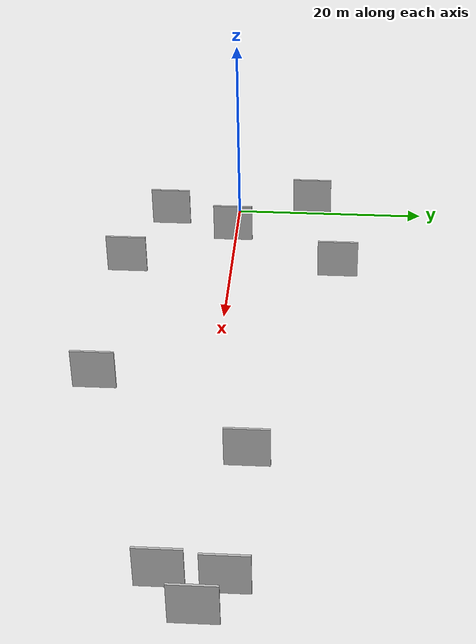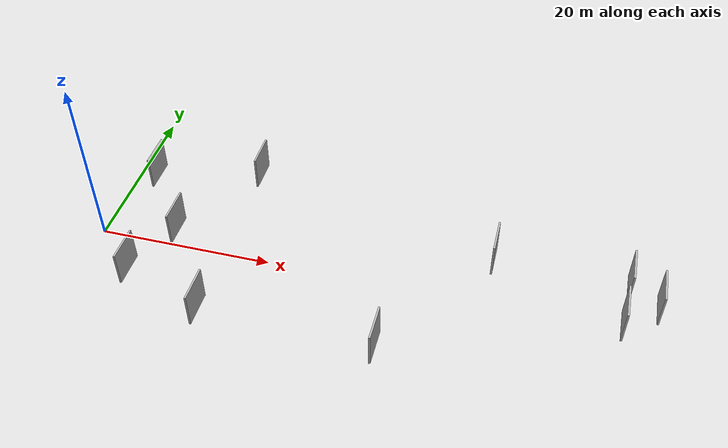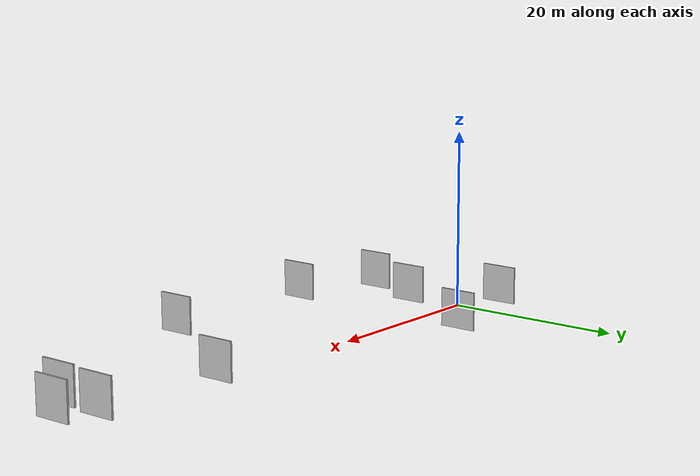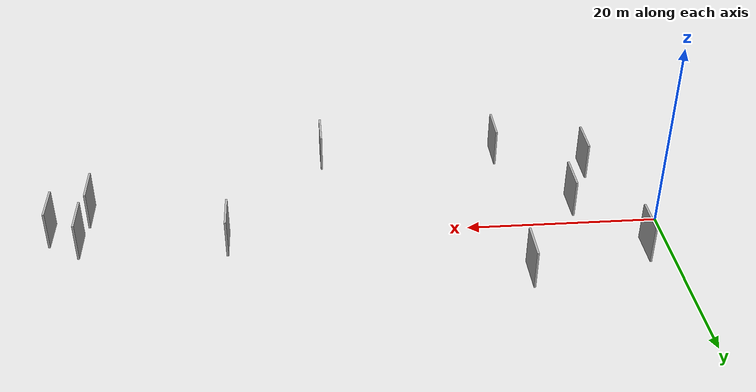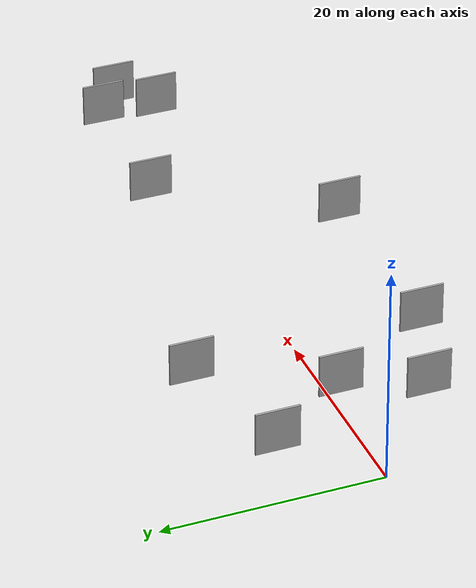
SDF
<sdf version="1.6">
 <world name="default">
  <scene>
   <sky><clouds><speed>12</speed></clouds></sky>
   <ambient>0.4 0.4 0.4 1</ambient>
   <background>0.7 0.7 0.7 1</background>
   <shadows>1</shadows>
  </scene>
  <gravity>0 0 -9.8066</gravity>
  <magnetic_field>6e-06 2.3e-05 -4.2e-05</magnetic_field>
  <physics default="0" name="default_physics" type="ode">
   <ode>
    <solver>
     <type>quick</type>
     <iters>10</iters>
     <sor>1.0</sor>
     <use_dynamic_moi_rescaling>0</use_dynamic_moi_rescaling>
    </solver>
    <constraints>
     <cfm>0</cfm>
     <erp>0.2</erp>
     <contact_max_correcting_vel>100</contact_max_correcting_vel>
     <contact_surface_layer>0.001</contact_surface_layer>
    </constraints>
   </ode>
   <max_step_size>0.004</max_step_size>
   <real_time_factor>1</real_time_factor>
   <real_time_update_rate>250</real_time_update_rate>
  </physics>
  <light name="sun" type="directional">
   <pose>0 0 10 0 0 0</pose>
   <diffuse>0.8 0.8 0.8 1</diffuse>
   <specular>0.2 0.2 0.2 1</specular>
   <attenuation>
    <range>1000</range>
    <constant>0.9</constant>
    <linear>0.01</linear>
    <quadratic>0.001</quadratic>
   </attenuation>
   <direction>-0.5 0.1 -0.9</direction>
  </light>
  <model name="grey_wall_1">
   <static>1</static>
   <pose>34.8250 -10.3955 2.5 0.000000 0.000000 1.570796</pose>
   <link name="link">
    <pose>0 0 2.00 0 0 0</pose>
    <collision name="collision"><geometry><box><size>4.00 0.2 4.00</size></box></geometry></collision>
    <visual name="visual">
     <cast_shadows>0</cast_shadows>
     <geometry><box><size>4.00 0.2 4.00</size></box></geometry>
     <material>
      <script>
       <uri>model://HANNAS_wall/materials/scripts</uri>
       <uri>model://HANNAS_wall/materials/textures</uri>
       <name>vrc/HANNAS_wall</name>
      </script>
     </material>
    </visual>
   </link>
  </model>
  <model name="grey_wall_2">
   <static>1</static>
   <pose>3.7568 8.1584 2.5 0.000000 0.000000 1.570796</pose>
   <link name="link">
    <pose>0 0 2.00 0 0 0</pose>
    <collision name="collision"><geometry><box><size>4.00 0.2 4.00</size></box></geometry></collision>
    <visual name="visual">
     <cast_shadows>0</cast_shadows>
     <geometry><box><size>4.00 0.2 4.00</size></box></geometry>
     <material>
      <script>
       <uri>model://HANNAS_wall/materials/scripts</uri>
       <uri>model://HANNAS_wall/materials/textures</uri>
       <name>vrc/HANNAS_wall</name>
      </script>
     </material>
    </visual>
   </link>
  </model>
  <model name="grey_wall_3">
   <static>1</static>
   <pose>9.5045 0.1072 2.5 0.000000 0.000000 1.570796</pose>
   <link name="link">
    <pose>0 0 2.00 0 0 0</pose>
    <collision name="collision"><geometry><box><size>4.00 0.2 4.00</size></box></geometry></collision>
    <visual name="visual">
     <cast_shadows>0</cast_shadows>
     <geometry><box><size>4.00 0.2 4.00</size></box></geometry>
     <material>
      <script>
       <uri>model://HANNAS_wall/materials/scripts</uri>
       <uri>model://HANNAS_wall/materials/textures</uri>
       <name>vrc/HANNAS_wall</name>
      </script>
     </material>
    </visual>
   </link>
  </model>
  <model name="grey_wall_4">
   <static>1</static>
   <pose>58.9486 3.6725 2.5 0.000000 0.000000 1.570796</pose>
   <link name="link">
    <pose>0 0 2.00 0 0 0</pose>
    <collision name="collision"><geometry><box><size>4.00 0.2 4.00</size></box></geometry></collision>
    <visual name="visual">
     <cast_shadows>0</cast_shadows>
     <geometry><box><size>4.00 0.2 4.00</size></box></geometry>
     <material>
      <script>
       <uri>model://HANNAS_wall/materials/scripts</uri>
       <uri>model://HANNAS_wall/materials/textures</uri>
       <name>vrc/HANNAS_wall</name>
      </script>
     </material>
    </visual>
   </link>
  </model>
  <model name="grey_wall_5">
   <static>1</static>
   <pose>44.5466 4.2187 2.5 0.000000 0.000000 1.570796</pose>
   <link name="link">
    <pose>0 0 2.00 0 0 0</pose>
    <collision name="collision"><geometry><box><size>4.00 0.2 4.00</size></box></geometry></collision>
    <visual name="visual">
     <cast_shadows>0</cast_shadows>
     <geometry><box><size>4.00 0.2 4.00</size></box></geometry>
     <material>
      <script>
       <uri>model://HANNAS_wall/materials/scripts</uri>
       <uri>model://HANNAS_wall/materials/textures</uri>
       <name>vrc/HANNAS_wall</name>
      </script>
     </material>
    </visual>
   </link>
  </model>
  <model name="grey_wall_6">
   <static>1</static>
   <pose>58.5591 -1.4793 2.5 0.000000 0.000000 1.570796</pose>
   <link name="link">
    <pose>0 0 2.00 0 0 0</pose>
    <collision name="collision"><geometry><box><size>4.00 0.2 4.00</size></box></geometry></collision>
    <visual name="visual">
     <cast_shadows>0</cast_shadows>
     <geometry><box><size>4.00 0.2 4.00</size></box></geometry>
     <material>
      <script>
       <uri>model://HANNAS_wall/materials/scripts</uri>
       <uri>model://HANNAS_wall/materials/textures</uri>
       <name>vrc/HANNAS_wall</name>
      </script>
     </material>
    </visual>
   </link>
  </model>
  <model name="grey_wall_7">
   <static>1</static>
   <pose>6.6328 -6.6994 2.5 0.000000 0.000000 1.570796</pose>
   <link name="link">
    <pose>0 0 2.00 0 0 0</pose>
    <collision name="collision"><geometry><box><size>4.00 0.2 4.00</size></box></geometry></collision>
    <visual name="visual">
     <cast_shadows>0</cast_shadows>
     <geometry><box><size>4.00 0.2 4.00</size></box></geometry>
     <material>
      <script>
       <uri>model://HANNAS_wall/materials/scripts</uri>
       <uri>model://HANNAS_wall/materials/textures</uri>
       <name>vrc/HANNAS_wall</name>
      </script>
     </material>
    </visual>
   </link>
  </model>
  <model name="grey_wall_8">
   <static>1</static>
   <pose>62.0711 1.5542 2.5 0.000000 0.000000 1.570796</pose>
   <link name="link">
    <pose>0 0 2.00 0 0 0</pose>
    <collision name="collision"><geometry><box><size>4.00 0.2 4.00</size></box></geometry></collision>
    <visual name="visual">
     <cast_shadows>0</cast_shadows>
     <geometry><box><size>4.00 0.2 4.00</size></box></geometry>
     <material>
      <script>
       <uri>model://HANNAS_wall/materials/scripts</uri>
       <uri>model://HANNAS_wall/materials/textures</uri>
       <name>vrc/HANNAS_wall</name>
      </script>
     </material>
    </visual>
   </link>
  </model>
  <model name="grey_wall_9">
   <static>1</static>
   <pose>15.9179 -10.1254 2.5 0.000000 0.000000 1.570796</pose>
   <link name="link">
    <pose>0 0 2.00 0 0 0</pose>
    <collision name="collision"><geometry><box><size>4.00 0.2 4.00</size></box></geometry></collision>
    <visual name="visual">
     <cast_shadows>0</cast_shadows>
     <geometry><box><size>4.00 0.2 4.00</size></box></geometry>
     <material>
      <script>
       <uri>model://HANNAS_wall/materials/scripts</uri>
       <uri>model://HANNAS_wall/materials/textures</uri>
       <name>vrc/HANNAS_wall</name>
      </script>
     </material>
    </visual>
   </link>
  </model>
  <model name="grey_wall_10">
   <static>1</static>
   <pose>15.7182 11.1687 2.5 0.000000 0.000000 1.570796</pose>
   <link name="link">
    <pose>0 0 2.00 0 0 0</pose>
    <collision name="collision"><geometry><box><size>4.00 0.2 4.00</size></box></geometry></collision>
    <visual name="visual">
     <cast_shadows>0</cast_shadows>
     <geometry><box><size>4.00 0.2 4.00</size></box></geometry>
     <material>
      <script>
       <uri>model://HANNAS_wall/materials/scripts</uri>
       <uri>model://HANNAS_wall/materials/textures</uri>
       <name>vrc/HANNAS_wall</name>
      </script>
     </material>
    </visual>
   </link>
  </model>
 </world>
</sdf>
